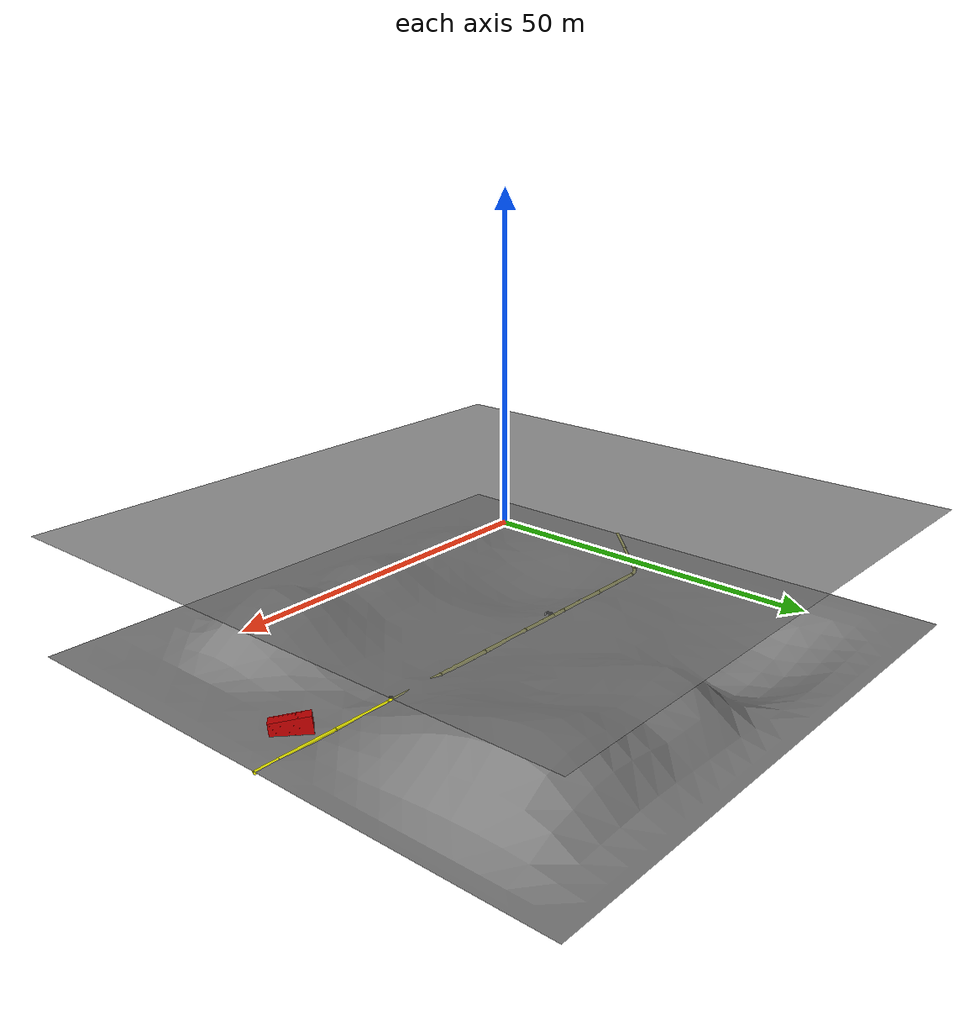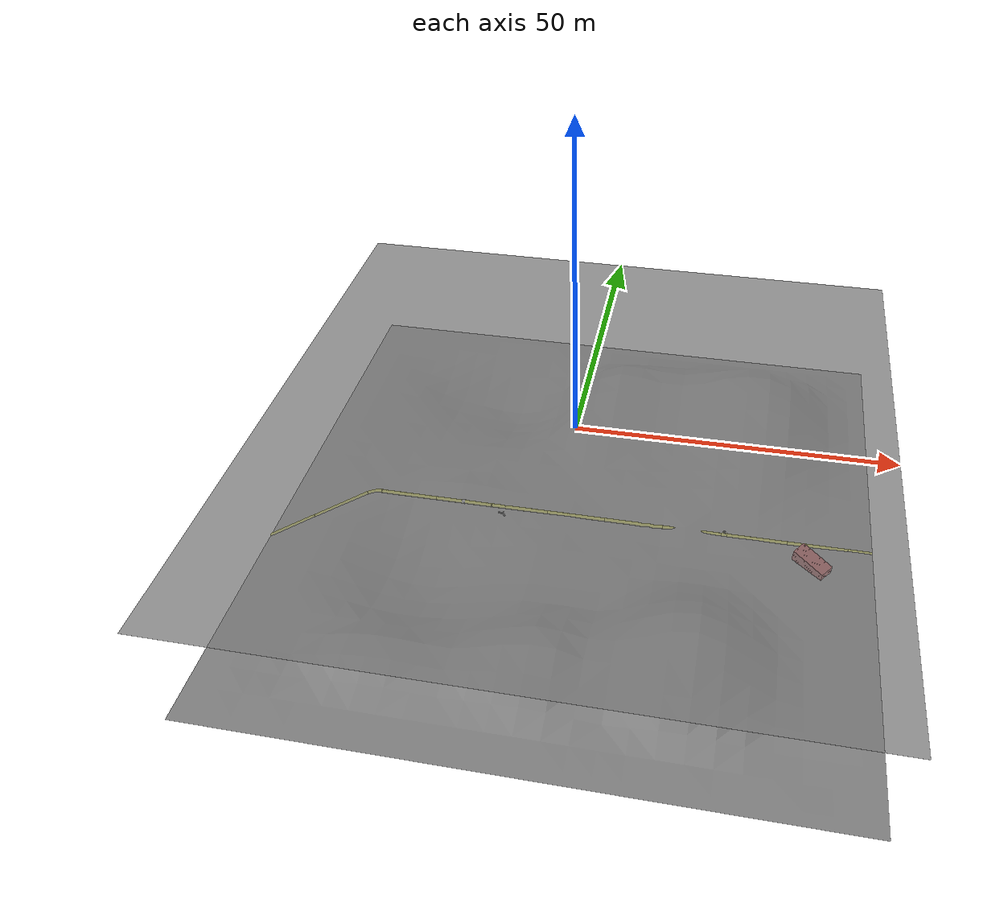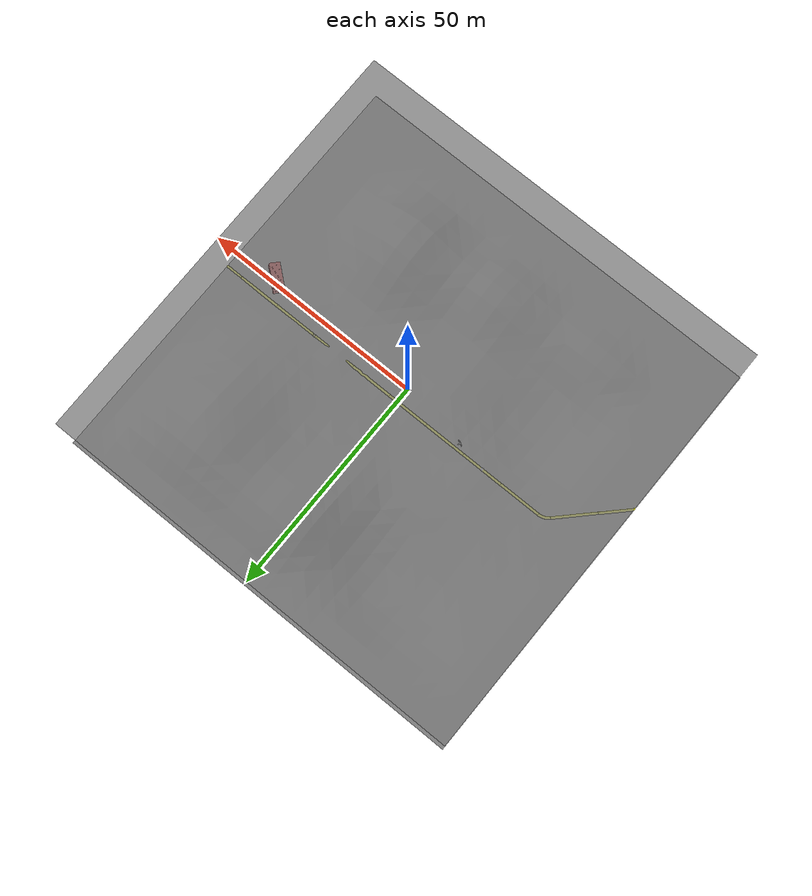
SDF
<?xml version="1.0" ?>
<sdf version="1.7">
  <world name="min_pipes">
    <!-- Base Ignition Gazebo plugins -->
    <plugin
        filename="ignition-gazebo-physics-system"
        name="ignition::gazebo::systems::Physics">
    </plugin>
    <plugin
        filename="ignition-gazebo-user-commands-system"
        name="ignition::gazebo::systems::UserCommands">
    </plugin>
    <plugin
        filename="ignition-gazebo-scene-broadcaster-system"
        name="ignition::gazebo::systems::SceneBroadcaster">
    </plugin>

    <!-- IMU plugin manages all IMU sensors -->
    <plugin filename="libignition-gazebo-imu-system.so"
            name="ignition::gazebo::systems::Imu">
    </plugin>

    <!-- To be able to use the lidar sensor -->
    <plugin filename="libignition-gazebo-sensors-system.so"
            name="ignition::gazebo::systems::Sensors">
      <render_engine>ogre2</render_engine>
    </plugin>

    <!-- Buoyancy plugin manages buoyancy for all models -->
    <plugin
        filename="ignition-gazebo-buoyancy-system"
        name="ignition::gazebo::systems::Buoyancy">
      <!-- Fluid density is 1 (air) above 0 and 1000 (water) below 0 -->
      <graded_buoyancy>
        <default_density>1000</default_density>
        <density_change>
          <above_depth>0</above_depth>
          <density>1</density>
        </density_change>
      </graded_buoyancy>
    </plugin>

    <!-- Global light source -->
    <light type="directional" name="sun">
      <pose>0 0 150 0 0 0</pose>
      <diffuse>1 1 1 1</diffuse>
      <specular>.1 .1 .1 1</specular>
      <direction>0.3 0.3 -1</direction>
      <cast_shadows>false</cast_shadows>
    </light>

    <!-- Global light source -->
    <light type="directional" name="sun_diffuse">
      <pose>0 0 -150 0 0 0</pose>
      <diffuse>0.6 0.6 0.6 1</diffuse>
      <specular>0 0 0 1</specular>
      <direction>-0.3 -0.3 -1</direction>
      <cast_shadows>false</cast_shadows>
    </light>

    <include>
      <uri>model://min_pipes_environment</uri>
    </include>
    <include>
      <uri>model://min_pipes_objects</uri>
    </include>
    <include>
      <uri>model://min_pipes_pipeline</uri>
    </include>

    <scene>
      <grid>false</grid>
      <ambient>0.01 0.01 0.01 1.0</ambient>
      <sky>
        <clouds>
          <speed>12</speed>
        </clouds>
      </sky>
      <shadows>1</shadows>
    </scene>

  </world>
</sdf>

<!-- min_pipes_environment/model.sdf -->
<sdf version="1.7">
  <model name="min_pipes_environment">
    <static>true</static>
    <link name="seabed">
      <collision name="seabed">
        <pose>0 0 -20 0 0 1.57</pose>
        <geometry>
          <mesh>
            <uri>meshes/seabed.dae</uri>
            <scale>1.0 1.0 1.0</scale>
          </mesh>
        </geometry>
      </collision>

      <visual name="seabed">
        <cast_shadows>true</cast_shadows>
        <pose>0 0 -20 0 0 1.57</pose>
        <geometry>
          <mesh>
            <uri>meshes/seabed.dae</uri>
            <scale>1.0 1.0 1.0</scale>
          </mesh>
        </geometry>
        <material>
          <pbr>
            <metal>
              <albedo_map>textures/soil_sand_0045_01.jpg</albedo_map>
            </metal>
          </pbr>
          <ambient>0.5 0.5 0.5 1.0</ambient>
          <diffuse>0.5 0.5 0.5 1.0</diffuse>
          <specular>0.2 0.2 0.2 1.0</specular>
        </material>
      </visual>
    </link>

    <link name="ocean_link">
      <visual name="surface">
        <pose>0 0 0 0 0 0</pose>
        <cast_shadows>false</cast_shadows>
        <geometry>
          <box>
            <size>100 100 0.01</size>
          </box>
        </geometry>
        <material>
          <pbr>
            <metal>
              <albedo_map>textures/water_water_0076_03_s.jpg</albedo_map>
            </metal>
          </pbr>
          <ambient> 0.5 0.5 0.5 0.8 </ambient>
          <diffuse> 0.5 0.5 0.5 0.8 </diffuse>
        </material>
      </visual>
    </link>

  </model>
</sdf>

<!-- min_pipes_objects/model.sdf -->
<sdf version="1.7">
  <model name="min_pipes_objects">
    <static>true</static>

    <link name="base_link">
      <collision name="container">
        <pose>40 -4.5 -19.4 2.27 1.40 1.57</pose>
        <geometry>
          <mesh>
            <uri>meshes/container.dae</uri>
            <scale>1.0 1.0 1.0</scale>
          </mesh>
        </geometry>
      </collision>

      <visual name="container">
        <cast_shadows>true</cast_shadows>
        <pose>40 -4.5 -19.4 2.27 1.40 1.57</pose>
        <geometry>
          <mesh>
            <uri>meshes/container.dae</uri>
            <scale>1.0 1.0 1.0</scale>
          </mesh>
        </geometry>
      </visual>
    </link>

    <link name="anchor">
      <collision name="anchor">
        <pose>-13 -1.5 -20 2.9 0.53 0.96</pose>
        <geometry>
          <mesh>
            <uri>meshes/anchor.dae</uri>
            <scale>1.0 1.0 1.0</scale>
          </mesh>
        </geometry>
      </collision>

      <visual name="anchor">
        <cast_shadows>true</cast_shadows>
        <pose>-13 -1.5 -20 2.9 0.53 0.96</pose>
        <geometry>
          <mesh>
            <uri>meshes/anchor.dae</uri>
            <scale>1.0 1.0 1.0</scale>
          </mesh>
        </geometry>
      </visual>
    </link>

  </model>
</sdf>

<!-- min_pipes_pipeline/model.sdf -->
<sdf version="1.7">
  <model name="min_pipes_pipeline">
    <static>true</static>

    <link name="pipe_segment1">
      <collision name="pipe_segment1">
        <pose>-51.56 -15.14 -20 0 0 2.36</pose>
        <geometry>
          <mesh>
            <uri>meshes/clipped_vA.dae</uri>
            <scale>1.0 1.0 1.0</scale>
          </mesh>
        </geometry>
      </collision>

      <visual name="pipe_segment1">
        <cast_shadows>true</cast_shadows>
        <pose>-51.56 -15.14 -20 0 0 2.36</pose>
        <geometry>
          <mesh>
            <uri>meshes/clipped_vA.dae</uri>
            <scale>1.0 1.0 1.0</scale>
          </mesh>
        </geometry>
      </visual>
    </link>

    <link name="pipe_segment1_to_segment2">
      <collision name="pipe_segment2">
        <pose>-44.49 -8.07 -20 0 0 2.36</pose>
        <geometry>
          <mesh>
            <uri>meshes/straight.dae</uri>
            <scale>1.0 1.0 1.0</scale>
          </mesh>
        </geometry>
      </collision>

      <visual name="pipe_segment2">
        <cast_shadows>true</cast_shadows>
        <pose>-44.49 -8.07 -20 0 0 2.36</pose>
        <geometry>
          <mesh>
            <uri>meshes/straight.dae</uri>
            <scale>1.0 1.0 1.0</scale>
          </mesh>
        </geometry>
      </visual>
    </link>

    <link name="pipe_segment2_to_segment3">
      <collision name="pipe_segment3">
        <pose>-37.41 -1 -20 0 3.14 2.36</pose>
        <geometry>
          <mesh>
            <uri>meshes/bent.dae</uri>
            <scale>1.0 1.0 1.0</scale>
          </mesh>
        </geometry>
      </collision>

      <visual name="pipe_segment3">
        <cast_shadows>true</cast_shadows>
        <pose>-37.41 -1 -20 0 3.14 2.36</pose>
        <geometry>
          <mesh>
            <uri>meshes/bent.dae</uri>
            <scale>1.0 1.0 1.0</scale>
          </mesh>
        </geometry>
      </visual>
    </link>

    <link name="pipe_segment3_to_segment4">
      <collision name="pipe_segment4">
        <pose>-35 0 -20 0 0 1.57</pose>
        <geometry>
          <mesh>
            <uri>meshes/straight.dae</uri>
            <scale>1.0 1.0 1.0</scale>
          </mesh>
        </geometry>
      </collision>

      <visual name="pipe_segment4">
        <cast_shadows>true</cast_shadows>
        <pose>-35 0 -20 0 0 1.57</pose>
        <geometry>
          <mesh>
            <uri>meshes/straight.dae</uri>
            <scale>1.0 1.0 1.0</scale>
          </mesh>
        </geometry>
      </visual>
    </link>

    <link name="pipe_segment4_to_segment5">
      <collision name="pipe_segment5">
        <pose>-25 0 -20 0 0 1.57</pose>
        <geometry>
          <mesh>
            <uri>meshes/anode.dae</uri>
            <scale>1.0 1.0 1.0</scale>
          </mesh>
        </geometry>
      </collision>

      <visual name="pipe_segment5">
        <cast_shadows>true</cast_shadows>
        <pose>-25 0 -20 0 0 1.57</pose>
        <geometry>
          <mesh>
            <uri>meshes/anode.dae</uri>
            <scale>1.0 1.0 1.0</scale>
          </mesh>
        </geometry>
      </visual>
    </link>

    <link name="pipe_segment5_to_segment6">
      <collision name="pipe_segment6">
        <pose>-15 0 -20 0 0 1.57</pose>
        <geometry>
          <mesh>
            <uri>meshes/dented.dae</uri>
            <scale>1.0 1.0 1.0</scale>
          </mesh>
        </geometry>
      </collision>

      <visual name="pipe_segment6">
        <cast_shadows>true</cast_shadows>
        <pose>-15 0 -20 0 0 1.57</pose>
        <geometry>
          <mesh>
            <uri>meshes/dented.dae</uri>
            <scale>1.0 1.0 1.0</scale>
          </mesh>
        </geometry>
      </visual>
    </link>

    <link name="pipe_segment6_to_segment7">
      <collision name="pipe_segment7">
        <pose>-5 0 -20 0 0 1.57</pose>
        <geometry>
          <mesh>
            <uri>meshes/straight.dae</uri>
            <scale>1.0 1.0 1.0</scale>
          </mesh>
        </geometry>
      </collision>

      <visual name="pipe_segment7">
        <cast_shadows>true</cast_shadows>
        <pose>-5 0 -20 0 0 1.57</pose>
        <geometry>
          <mesh>
            <uri>meshes/straight.dae</uri>
            <scale>1.0 1.0 1.0</scale>
          </mesh>
        </geometry>
      </visual>
    </link>

    <link name="pipe_segment7_to_segment8">
      <collision name="pipe_segment8">
        <pose>5 0 -20 0 0 1.57</pose>
        <geometry>
          <mesh>
            <uri>meshes/warped.dae</uri>
            <scale>1.0 1.0 1.0</scale>
          </mesh>
        </geometry>
      </collision>

      <visual name="pipe_segment8">
        <cast_shadows>true</cast_shadows>
        <pose>5 0 -20 0 0 1.57</pose>
        <geometry>
          <mesh>
            <uri>meshes/warped.dae</uri>
            <scale>1.0 1.0 1.0</scale>
          </mesh>
        </geometry>
      </visual>
    </link>

    <link name="pipe_segment8_to_segment9">
      <collision name="pipe_segment9">
        <pose>15 0 -20 0 0 1.57</pose>
        <geometry>
          <mesh>
            <uri>meshes/straight.dae</uri>
            <scale>1.0 1.0 1.0</scale>
          </mesh>
        </geometry>
      </collision>

      <visual name="pipe_segment9">
        <cast_shadows>true</cast_shadows>
        <pose>15 0 -20 0 0 1.57</pose>
        <geometry>
          <mesh>
            <uri>meshes/straight.dae</uri>
            <scale>1.0 1.0 1.0</scale>
          </mesh>
        </geometry>
      </visual>
    </link>

    <link name="pipe_segment9_to_segment10">
      <collision name="pipe_segment10">
        <pose>25 0 -20 0 0 1.57</pose>
        <geometry>
          <mesh>
            <uri>meshes/valve.dae</uri>
            <scale>1.0 1.0 1.0</scale>
          </mesh>
        </geometry>
      </collision>

      <visual name="pipe_segment10">
        <cast_shadows>true</cast_shadows>
        <pose>25 0 -20 0 0 1.57</pose>
        <geometry>
          <mesh>
            <uri>meshes/valve.dae</uri>
            <scale>1.0 1.0 1.0</scale>
          </mesh>
        </geometry>
      </visual>
    </link>

    <link name="pipe_segment10_to_segment11">
      <collision name="pipe_segment11">
        <pose>26 0 -20 0 0 1.57</pose>
        <geometry>
          <mesh>
            <uri>meshes/straight.dae</uri>
            <scale>1.0 1.0 1.0</scale>
          </mesh>
        </geometry>
      </collision>

      <visual name="pipe_segment11">
        <cast_shadows>true</cast_shadows>
        <pose>26 0 -20 0 0 1.57</pose>
        <geometry>
          <mesh>
            <uri>meshes/straight.dae</uri>
            <scale>1.0 1.0 1.0</scale>
          </mesh>
        </geometry>
      </visual>
    </link>

    <link name="pipe_segment11_to_segment12">
      <collision name="pipe_segment12">
        <pose>36 0 -20 0 0 1.57</pose>
        <geometry>
          <mesh>
            <uri>meshes/straight.dae</uri>
            <scale>1.0 1.0 1.0</scale>
          </mesh>
        </geometry>
      </collision>

      <visual name="pipe_segment12">
        <cast_shadows>true</cast_shadows>
        <pose>36 0 -20 0 0 1.57</pose>
        <geometry>
          <mesh>
            <uri>meshes/straight.dae</uri>
            <scale>1.0 1.0 1.0</scale>
          </mesh>
        </geometry>
      </visual>
    </link>

    <link name="pipe_segment12_to_segment13">
      <collision name="pipe_segment13">
        <pose>46 0 -20 0 0 1.57</pose>
        <geometry>
          <mesh>
            <uri>meshes/clipped_vB.dae</uri>
            <scale>1.0 1.0 1.0</scale>
          </mesh>
        </geometry>
      </collision>

      <visual name="pipe_segment13">
        <cast_shadows>true</cast_shadows>
        <pose>46 0 -20 0 0 1.57</pose>
        <geometry>
          <mesh>
            <uri>meshes/clipped_vB.dae</uri>
            <scale>1.0 1.0 1.0</scale>
          </mesh>
        </geometry>
      </visual>
    </link>

    <plugin
        filename="ignition-gazebo-pose-publisher-system"
        name="ignition::gazebo::systems::PosePublisher">
      <publish_link_pose>false</publish_link_pose>
      <publish_collision_pose>false</publish_collision_pose>
      <publish_visual_pose>true</publish_visual_pose>
      <publish_sensor_pose>false</publish_sensor_pose>
      <publish_nested_model_pose>false</publish_nested_model_pose>
      <use_pose_vector_msg>true</use_pose_vector_msg>
      <update_frequency>20</update_frequency>
    </plugin>

  </model>
</sdf>
